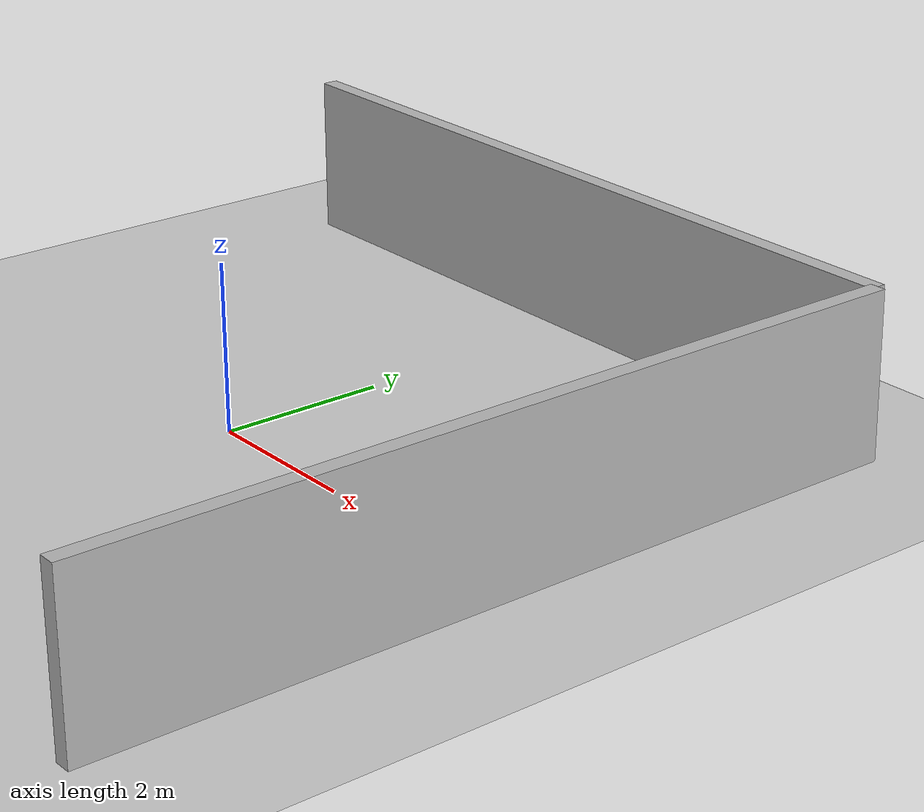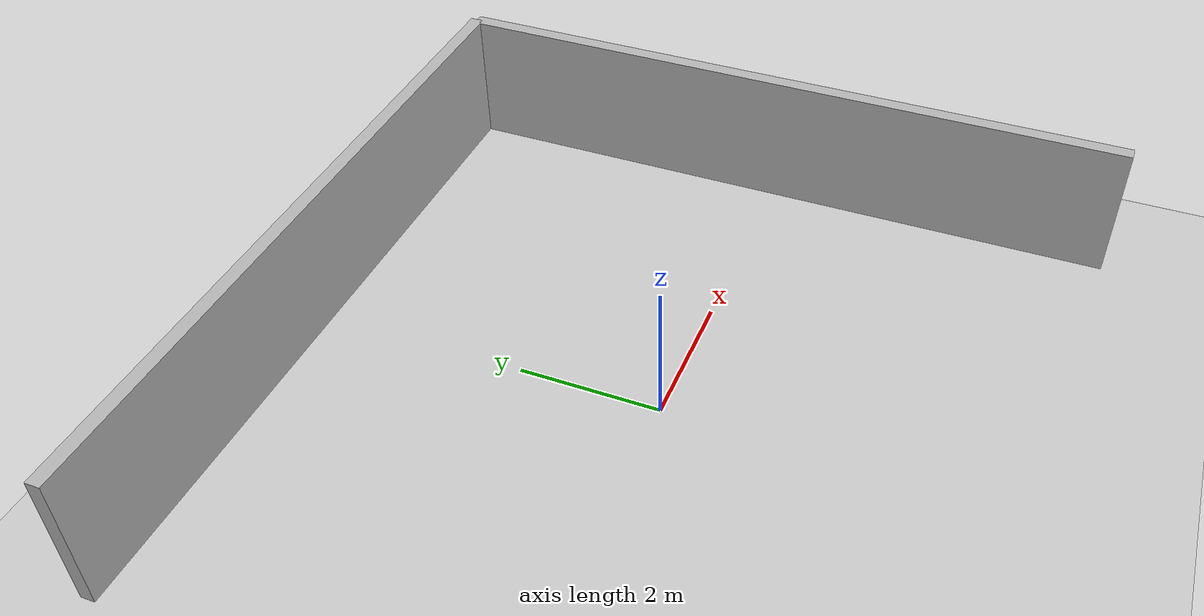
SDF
<?xml version="1.0" ?>
<sdf version="1.9">
  <world name="maze_world">

    <plugin
      filename="gz-sim-physics-system"
      name="gz::sim::systems::Physics">
    </plugin>

    <plugin
      filename="gz-sim-scene-broadcaster-system"
      name="gz::sim::systems::SceneBroadcaster">
    </plugin>

    <plugin
      filename="gz-sim-user-commands-system"
      name="gz::sim::systems::UserCommands">
    </plugin>

    <plugin
      filename="gz-sim-sensors-system"
      name="gz::sim::systems::Sensors">
      <render_engine>ogre2</render_engine>
    </plugin>

    <light type="directional" name="sun">
      <pose>0 0 10 0 0 0</pose>
      <diffuse>1 1 1 1</diffuse>
      <specular>0.1 0.1 0.1 1</specular>
    </light>

    <!-- Ground -->
    <model name="ground">
      <static>true</static>
      <link name="link">
        <collision name="collision">
          <geometry>
            <plane>
              <size>100 100</size>
            </plane>
          </geometry>
        </collision>
        <visual name="visual">
          <geometry>
            <plane>
              <size>100 100</size>
            </plane>
          </geometry>
        </visual>
      </link>
    </model>

    <!-- Wall 1 -->
    <model name="wall1">
      <static>true</static>
      <pose>0 5 1 0 0 0</pose>
      <link name="link">
        <collision name="collision">
          <geometry>
            <box>
              <size>10 0.2 2</size>
            </box>
          </geometry>
        </collision>
        <visual name="visual">
          <geometry>
            <box>
              <size>10 0.2 2</size>
            </box>
          </geometry>
        </visual>
      </link>
    </model>

    <!-- Wall 2 -->
    <model name="wall2">
      <static>true</static>
      <pose>5 0 1 0 0 0</pose>
      <link name="link">
        <collision name="collision">
          <geometry>
            <box>
              <size>0.2 10 2</size>
            </box>
          </geometry>
        </collision>
        <visual name="visual">
          <geometry>
            <box>
              <size>0.2 10 2</size>
            </box>
          </geometry>
        </visual>
      </link>
    </model>

  </world>
</sdf>
